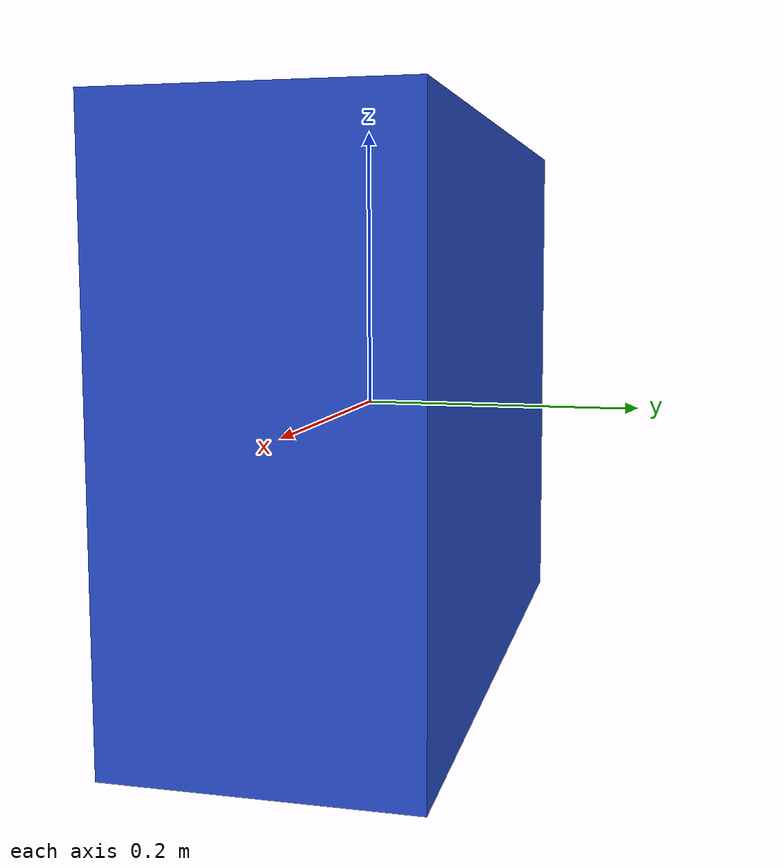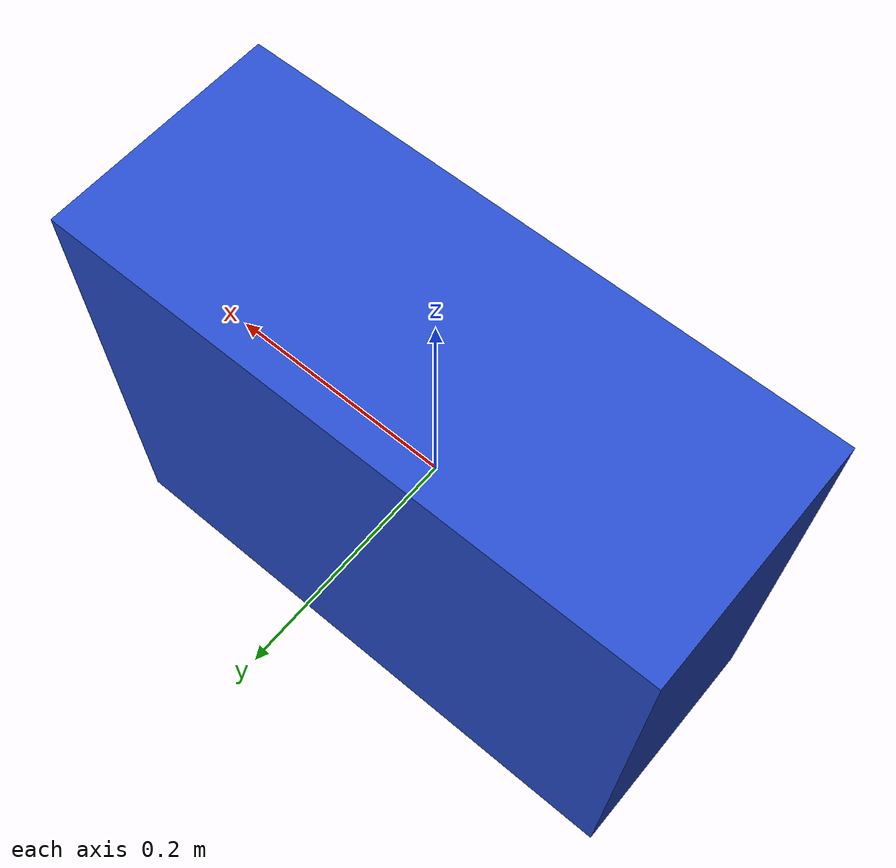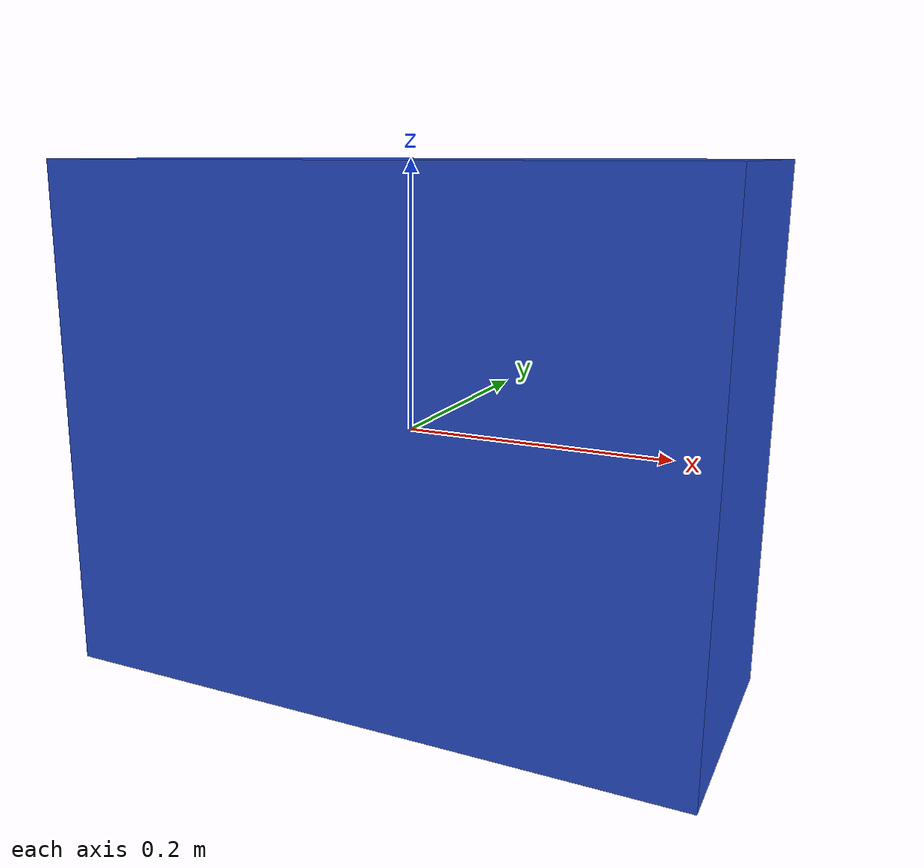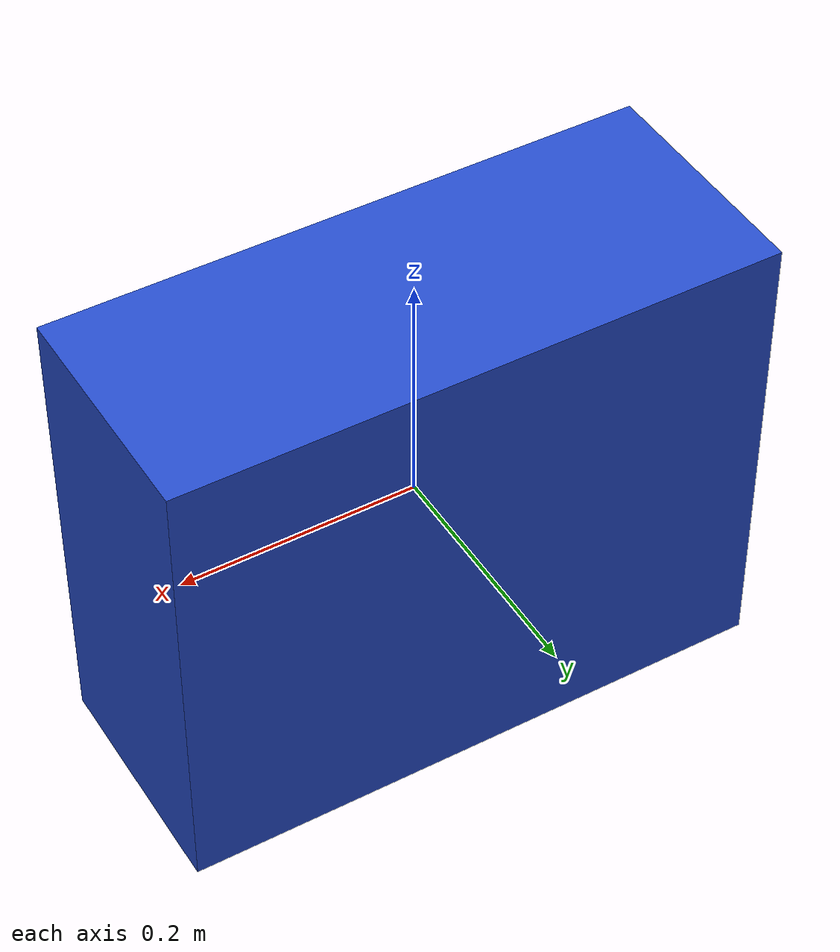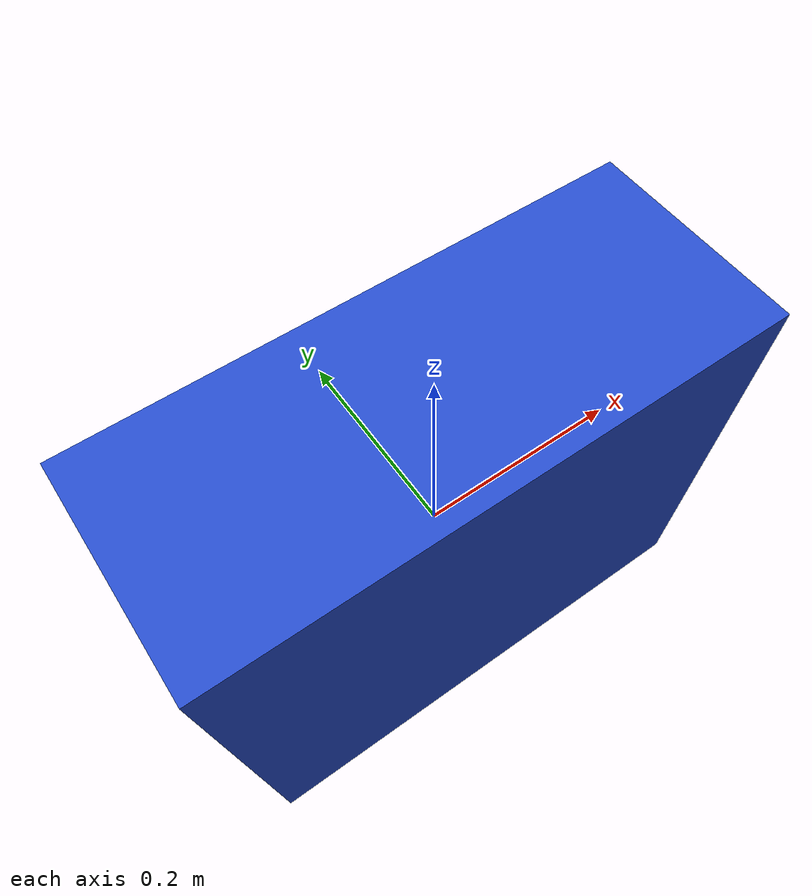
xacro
<?xml version="1.0" ?>
<robot name="simple_box">

  <link name="my_box">

    <inertial>
      <origin xyz="0 0 0" />
      <mass value="100.0" />
      <inertia  ixx="1.0" ixy="0.0"  ixz="0.0"  iyy="100.0"  iyz="0.0"  izz="1.0" />
    </inertial>

    <visual>
      <origin xyz="0 0 0"/>
      <geometry>
        <box size="0.5 0.2 0.4" />
      </geometry>
    </visual>

    <collision>
      <origin xyz="0 0 0"/>
      <geometry>
        <box size="0.5 0.2 0.4" />
      </geometry>
    </collision>

  </link>

  <gazebo reference="my_box">
    <material>Gazebo/Blue</material>
  </gazebo>

</robot>
